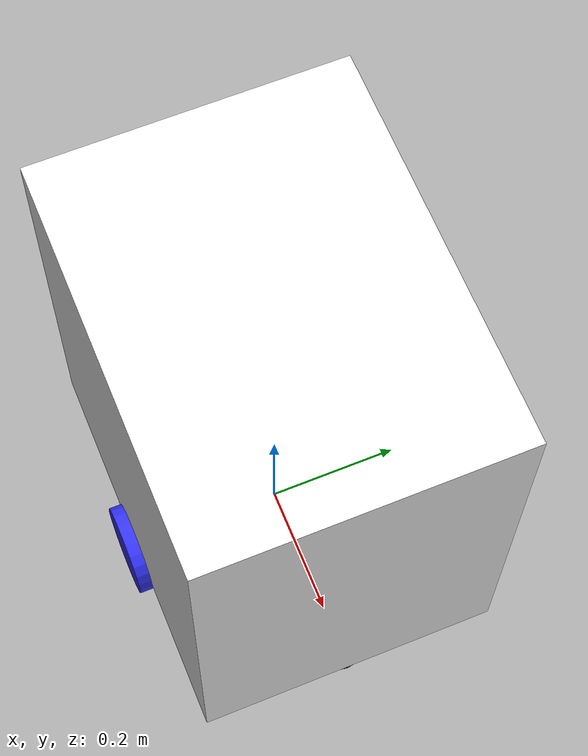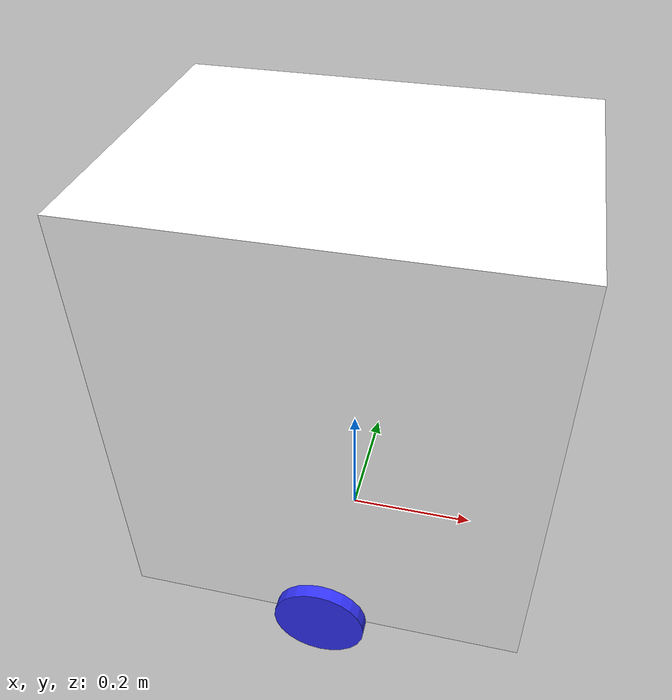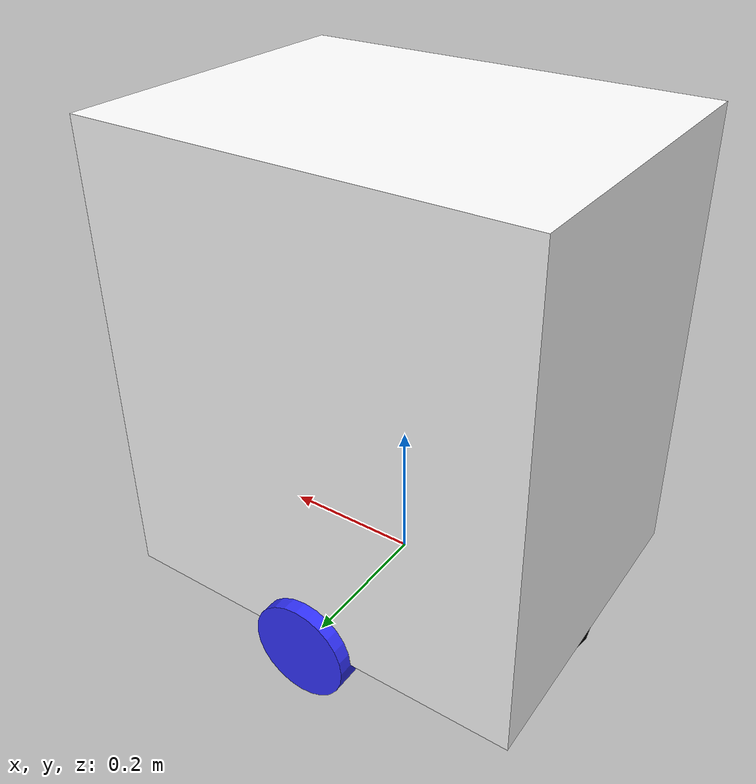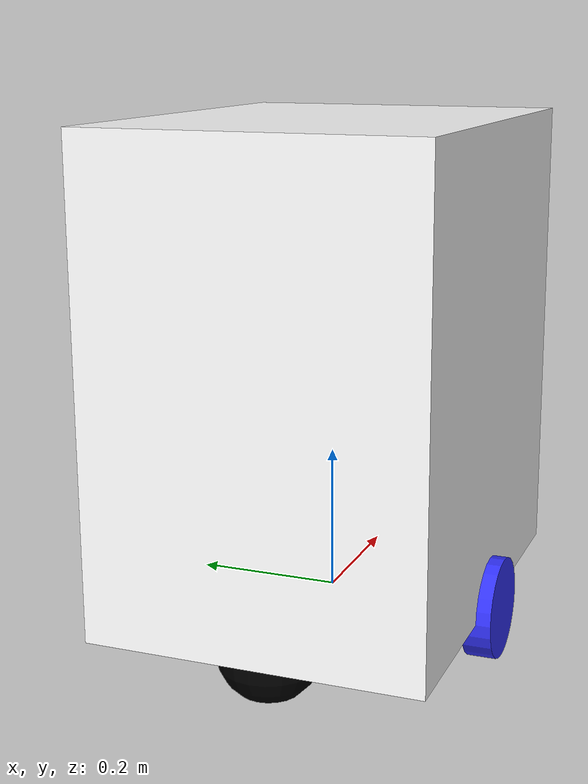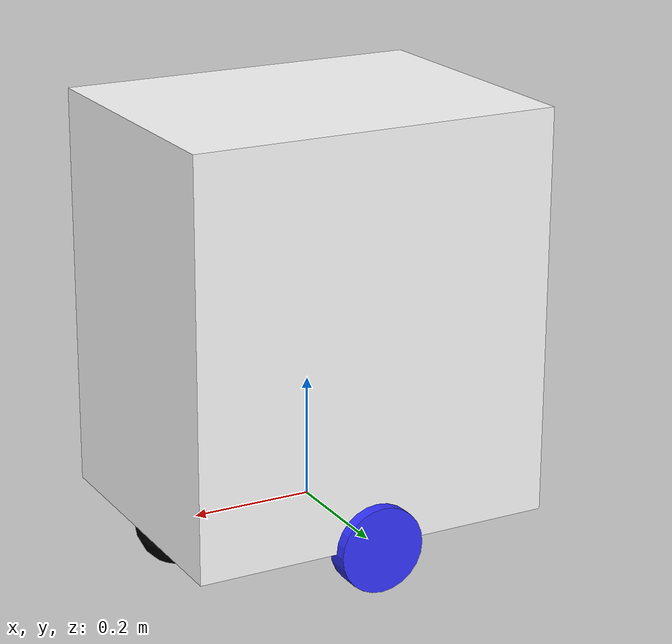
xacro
<?xml version="1.0"?>
<robot xmlns:xacro="http://www.ros.org/wiki/xacro"  name="robot">

    <xacro:arg name="use_ros2_control" default="true"/>
    <xacro:arg name="sim_mode" default="false"/>

    <xacro:include filename="robot_core.xacro" />

    <xacro:if value="$(arg use_ros2_control)">
        <xacro:include filename="ros2_control.xacro" />
    </xacro:if>
    <xacro:unless value="$(arg use_ros2_control)">
        <xacro:include filename="gazebo_control.xacro" />
    </xacro:unless>
    <xacro:include filename="lidar.xacro" />

</robot>

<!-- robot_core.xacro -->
<robot xmlns:xacro="http://www.ros.org/wiki/xacro">

    <xacro:include filename="inertial_macros.xacro"/>

    <!-- COLOR -->
    <!-- xFront yLeft zTop -->

    <material name="white">
        <color rgba="1 1 1 1"/>
    </material>

    <material name="orange">
        <color rgba="1 0.3 0.1 1"/>
    </material>

    <material name="blue">
        <color rgba="0.2 0.2 1 1"/>
    </material>

    <material name="red">
        <color rgba="1 0.2 0.2 1"/>
    </material>

    <material name="black">
        <color rgba="0 0 0 1"/>
    </material>

    <!-- BASE LINK -->

    <link name="base_link">

    </link>

    <!-- CHASSIS LINK -->

    <joint name="chassis_joint" type="fixed">
        <parent link="base_link"/>
        <child link="chassis"/>
        <origin xyz="-0.3 0.0 0.0"/>
    </joint>

    <link name="chassis">
        <visual>
            <origin xyz="0.3 0.0 0.33"/>
            <geometry>
                <box size="0.6 0.46 0.66"/>
            </geometry>
            <material name="white"/>
        </visual>
        <collision>
            <origin xyz="0.3 0.0 0.33"/>
            <geometry>
                <box size="0.6 0.46 0.66"/>
            </geometry>
        </collision>
        <xacro:inertial_box mass="10.0" x="0.6" y="0.46" z="0.66">
            <origin xyz="0.3 0.0 0.33" rpy="0.0 0.0 0.0"/>
        </xacro:inertial_box>
    </link>

    <gazebo reference="chassis">
        <material>
            Gazebo/White
        </material>
    </gazebo>

    <!-- LEFT WHEEL LINK -->

    <joint name="left_wheel_joint" type="continuous">
        <parent link="base_link"/>
        <child link="left_wheel"/>
        <origin xyz="0.0 0.23 0.0" rpy="-${pi/2} 0.0 0.0"/>
        <axis xyz="0.0 0.0 1"/>
    </joint>

    <link name="left_wheel">
        <visual>
            <geometry>
                <cylinder radius="0.07" length="0.04"/>
            </geometry>
            <material name="blue"/>
        </visual>
        <collision>
            <geometry>
                <sphere radius="0.07"/>
            </geometry>
        </collision>
        <xacro:inertial_cylinder mass="0.3" length="0.04" radius="0.07">
            <origin xyz="0 0 0" rpy="0.0 0.0 0.0"/>
        </xacro:inertial_cylinder>
    </link>

    <gazebo reference="left_wheel">
        <material>
            Gazebo/Blue
        </material>
    </gazebo>

    <!-- RIGHT WHEEL LINK -->

    <joint name="right_wheel_joint" type="continuous">
        <parent link="base_link"/>
        <child link="right_wheel"/>
        <origin xyz="0.0 -0.23 0.0" rpy="${pi/2} 0.0 0.0"/>
        <axis xyz="0.0 0.0 -1"/>
    </joint>

    <link name="right_wheel">
        <visual>
            <geometry>
                <cylinder radius="0.07" length="0.04"/>
            </geometry>
            <material name="blue"/>
        </visual>
        <collision>
            <geometry>
                <sphere radius="0.07"/>
            </geometry>
        </collision>
        <xacro:inertial_cylinder mass="0.3" length="0.04" radius="0.07">
            <origin xyz="0 0 0" rpy="0.0 0.0 0.0"/>
        </xacro:inertial_cylinder>
    </link>

    <gazebo reference="right_wheel">
        <material>
            Gazebo/Blue
        </material>
    </gazebo>

    <!-- FRONT CASTER WHEEL LINK -->

    <joint name="front_caster_wheel_link" type="fixed">
        <parent link="chassis"/>
        <child link="front_caster_wheel"/>
        <origin xyz="0.53 0.0 0.0"/>
    </joint>

    <link name="front_caster_wheel">
        <visual>
            <geometry>
                <sphere radius="0.07"/>
            </geometry>
            <material name="black"/>
        </visual>
        <collision>
            <geometry>
                <sphere radius="0.07"/>
            </geometry>
        </collision>
        <xacro:inertial_sphere mass="0.2" radius="0.07">
            <origin xyz="0 0 0" rpy="0.0 0.0 0.0"/>
        </xacro:inertial_sphere>
    </link>

    <gazebo reference="front_caster_wheel">
        <material>
            Gazebo/Black
        </material>
        <mu1 value="0.001"/>
        <mu2 value="0.001"/>
    </gazebo>

    <!-- BACK CASTER WHEEL LINK -->

    <joint name="back_caster_wheel_link" type="fixed">
        <parent link="chassis"/>
        <child link="back_caster_wheel"/>
        <origin xyz="0.07 0.0 0.0"/>
    </joint>

    <link name="back_caster_wheel">
        <visual>
            <geometry>
                <sphere radius="0.07"/>
            </geometry>
            <material name="black"/>
        </visual>
        <collision>
            <geometry>
                <sphere radius="0.07"/>
            </geometry>
        </collision>
        <xacro:inertial_sphere mass="0.2" radius="0.07">
            <origin xyz="0 0 0" rpy="0.0 0.0 0.0"/>
        </xacro:inertial_sphere>
    </link>

    <gazebo reference="back_caster_wheel">
        <material>Gazebo/Black</material>
        <mu1 value="0.001"/>
        <mu2 value="0.001"/>
    </gazebo>

</robot>

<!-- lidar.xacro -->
<robot xmlns:xacro="http://www.ros.org/wiki/xacro" >

    <!-- xFront yLeft zTop -->

    <joint name="laser_joint" type="fixed">
        <parent link="chassis"/>
        <child link="laser_frame"/>
        <origin xyz="0.122 0 0.212" rpy="0 0 0"/>
    </joint>

    <link name="laser_frame">
        <visual>
            <geometry>
                <cylinder radius="0.05" length="0.04"/>
            </geometry>
            <material name="black"/>
        </visual>
        <visual>
            <origin xyz="0 0 -0.05"/>
            <geometry>
                <cylinder radius="0.01" length="0.1"/>
            </geometry>
            <material name="black"/>
        </visual>
        <collision>
            <geometry>
                <cylinder radius="0.05" length="0.04"/>
            </geometry>
        </collision>
        <xacro:inertial_cylinder mass="0.1" length="0.04" radius="0.05">
            <origin xyz="0 0 0" rpy="0 0 0"/>
        </xacro:inertial_cylinder>
    </link>

    <gazebo reference="laser_frame">
        <material>Gazebo/Black</material>

        <sensor name="laser" type="ray">
            <pose> 0 0 0 0 0 0 </pose>
            <visualize>false</visualize>
            <update_rate>10</update_rate>
            <ray>
                <scan>
                    <horizontal>
                        <samples>360</samples>
                        <min_angle>-3.14</min_angle>
                        <max_angle>3.14</max_angle>
                    </horizontal>
                </scan>
                <range>
                    <min>0.3</min>
                    <max>12</max>
                </range>
            </ray>
            <plugin name="laser_controller" filename="libgazebo_ros_ray_sensor.so">
                <ros>
                    <argument>~/out:=scan</argument>
                </ros>
                <output_type>sensor_msgs/LaserScan</output_type>
                <frame_name>laser_frame</frame_name>
            </plugin>
        </sensor>
    </gazebo>

</robot>
